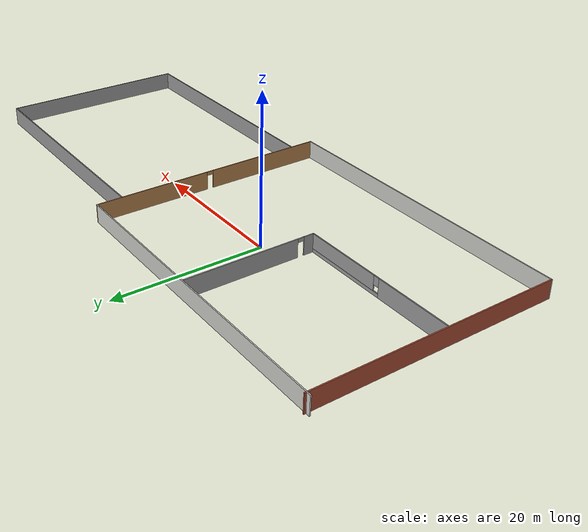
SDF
<?xml version='1.0'?>
<sdf version='1.6'>
  <model name='warehouseModel'>
    <pose frame=''>11.9115 -3.216 0 0 -0 0</pose>
    <link name='Wall_0'>
      <collision name='Wall_0_Collision'>
        <geometry>
          <box>
            <size>43 0.15 2.5</size>
          </box>
        </geometry>
        <pose frame=''>0 0 1.25 0 -0 0</pose>
      </collision>
      <visual name='Wall_0_Visual'>
        <pose frame=''>0 0 1.25 0 -0 0</pose>
        <geometry>
          <box>
            <size>43 0.15 2.5</size>
          </box>
        </geometry>
        <material>
          <script>
            <uri>file://media/materials/scripts/gazebo.material</uri>
            <name>Gazebo/CeilingTiled</name>
          </script>
          <ambient>1 1 1 1</ambient>
        </material>
        <meta>
          <layer>0</layer>
        </meta>
      </visual>
      <pose frame=''>-17.0835 16.425 0 0 -0 0</pose>
    </link>
    <link name='Wall_1'>
      <pose frame=''>4.34146 -0.125 0 0 0 -1.5708</pose>
      <visual name='Wall_1_Visual_0'>
        <pose frame=''>-8.60332 0 1.25 0 -0 0</pose>
        <geometry>
          <box>
            <size>16.0434 0.15 2.5</size>
          </box>
        </geometry>
        <material>
          <script>
            <uri>file://media/materials/scripts/gazebo.material</uri>
            <name>Gazebo/Wood</name>
          </script>
          <ambient>0.435294 0.796078 0.67451 1</ambient>
        </material>
        <meta>
          <layer>0</layer>
        </meta>
      </visual>
      <collision name='Wall_1_Collision_0'>
        <geometry>
          <box>
            <size>16.0434 0.15 2.5</size>
          </box>
        </geometry>
        <pose frame=''>-8.60332 0 1.25 0 -0 0</pose>
      </collision>
      <visual name='Wall_1_Visual_1'>
        <pose frame=''>8.47167 0 1.25 0 -0 0</pose>
        <geometry>
          <box>
            <size>16.3066 0.15 2.5</size>
          </box>
        </geometry>
        <material>
          <script>
            <uri>file://media/materials/scripts/gazebo.material</uri>
            <name>Gazebo/Wood</name>
          </script>
          <ambient>0.435294 0.796078 0.67451 1</ambient>
        </material>
        <meta>
          <layer>0</layer>
        </meta>
      </visual>
      <collision name='Wall_1_Collision_1'>
        <geometry>
          <box>
            <size>16.3066 0.15 2.5</size>
          </box>
        </geometry>
        <pose frame=''>8.47167 0 1.25 0 -0 0</pose>
      </collision>
      <visual name='Wall_1_Visual_2'>
        <pose frame=''>-0.131649 0 2.25 0 -0 0</pose>
        <geometry>
          <box>
            <size>0.9 0.15 0.5</size>
          </box>
        </geometry>
        <material>
          <script>
            <uri>file://media/materials/scripts/gazebo.material</uri>
            <name>Gazebo/Wood</name>
          </script>
          <ambient>0.435294 0.796078 0.67451 1</ambient>
        </material>
        <meta>
          <layer>0</layer>
        </meta>
      </visual>
      <collision name='Wall_1_Collision_2'>
        <geometry>
          <box>
            <size>0.9 0.15 0.5</size>
          </box>
        </geometry>
        <pose frame=''>-0.131649 0 2.25 0 -0 0</pose>
      </collision>
    </link>
    <link name='Wall_10'>
      <collision name='Wall_10_Collision'>
        <geometry>
          <box>
            <size>34 0.15 2.5</size>
          </box>
        </geometry>
        <pose frame=''>0 0 1.25 0 -0 0</pose>
      </collision>
      <visual name='Wall_10_Visual'>
        <pose frame=''>0 0 1.25 0 -0 0</pose>
        <geometry>
          <box>
            <size>34 0.15 2.5</size>
          </box>
        </geometry>
        <material>
          <script>
            <uri>file://media/materials/scripts/gazebo.material</uri>
            <name>Gazebo/Grey</name>
          </script>
          <ambient>1 1 1 1</ambient>
        </material>
        <meta>
          <layer>0</layer>
        </meta>
      </visual>
      <pose frame=''>21.5835 -13.3779 0 0 -0 3.14159</pose>
    </link>
    <link name='Wall_2'>
      <collision name='Wall_2_Collision'>
        <geometry>
          <box>
            <size>42.5 0.15 2.5</size>
          </box>
        </geometry>
        <pose frame=''>0 0 1.25 0 -0 0</pose>
      </collision>
      <visual name='Wall_2_Visual'>
        <pose frame=''>0 0 1.25 0 -0 0</pose>
        <geometry>
          <box>
            <size>42.5 0.15 2.5</size>
          </box>
        </geometry>
        <material>
          <script>
            <uri>file://media/materials/scripts/gazebo.material</uri>
            <name>Gazebo/CeilingTiled</name>
          </script>
          <ambient>0.435294 0.796078 0.67451 1</ambient>
        </material>
        <meta>
          <layer>0</layer>
        </meta>
      </visual>
      <pose frame=''>-16.8335 -16.675 0 0 -0 3.14159</pose>
    </link>
    <link name='Wall_3'>
      <collision name='Wall_3_Collision'>
        <geometry>
          <box>
            <size>33.5 0.15 2.5</size>
          </box>
        </geometry>
        <pose frame=''>0 0 1.25 0 -0 0</pose>
      </collision>
      <visual name='Wall_3_Visual'>
        <pose frame=''>0 0 1.25 0 -0 0</pose>
        <geometry>
          <box>
            <size>33.5 0.15 2.5</size>
          </box>
        </geometry>
        <material>
          <script>
            <uri>file://media/materials/scripts/gazebo.material</uri>
            <name>Gazebo/Bricks</name>
          </script>
          <ambient>0.996078 0.47451 0.0196078 1</ambient>
        </material>
        <meta>
          <layer>0</layer>
        </meta>
      </visual>
      <pose frame=''>-38.0085 0 0 0 -0 1.5708</pose>
    </link>
    <link name='Wall_5'>
      <pose frame=''>-26.9383 -1.39551 0 0 -0 0</pose>
      <visual name='Wall_5_Visual_0'>
        <pose frame=''>-5.80789 0 1.25 0 -0 0</pose>
        <geometry>
          <box>
            <size>10.3842 0.15 2.5</size>
          </box>
        </geometry>
        <material>
          <script>
            <uri>file://media/materials/scripts/gazebo.material</uri>
            <name>Gazebo/Grey</name>
          </script>
          <ambient>1 1 1 1</ambient>
        </material>
        <meta>
          <layer>0</layer>
        </meta>
      </visual>
      <collision name='Wall_5_Collision_0'>
        <geometry>
          <box>
            <size>10.3842 0.15 2.5</size>
          </box>
        </geometry>
        <pose frame=''>-5.80789 0 1.25 0 -0 0</pose>
      </collision>
      <visual name='Wall_5_Visual_1'>
        <pose frame=''>5.19211 0 0.25 0 -0 0</pose>
        <geometry>
          <box>
            <size>11.6158 0.15 0.5</size>
          </box>
        </geometry>
        <material>
          <script>
            <uri>file://media/materials/scripts/gazebo.material</uri>
            <name>Gazebo/Grey</name>
          </script>
          <ambient>1 1 1 1</ambient>
        </material>
        <meta>
          <layer>0</layer>
        </meta>
      </visual>
      <collision name='Wall_5_Collision_1'>
        <geometry>
          <box>
            <size>11.6158 0.15 0.5</size>
          </box>
        </geometry>
        <pose frame=''>5.19211 0 0.25 0 -0 0</pose>
      </collision>
      <visual name='Wall_5_Visual_2'>
        <pose frame=''>5.59211 0 1.5 0 -0 0</pose>
        <geometry>
          <box>
            <size>10.8158 0.15 2</size>
          </box>
        </geometry>
        <material>
          <script>
            <uri>file://media/materials/scripts/gazebo.material</uri>
            <name>Gazebo/Grey</name>
          </script>
          <ambient>1 1 1 1</ambient>
        </material>
        <meta>
          <layer>0</layer>
        </meta>
      </visual>
      <collision name='Wall_5_Collision_2'>
        <geometry>
          <box>
            <size>10.8158 0.15 2</size>
          </box>
        </geometry>
        <pose frame=''>5.59211 0 1.5 0 -0 0</pose>
      </collision>
      <visual name='Wall_5_Visual_3'>
        <pose frame=''>-0.215775 0 1.9 0 -0 0</pose>
        <geometry>
          <box>
            <size>0.8 0.15 1.2</size>
          </box>
        </geometry>
        <material>
          <script>
            <uri>file://media/materials/scripts/gazebo.material</uri>
            <name>Gazebo/Grey</name>
          </script>
          <ambient>1 1 1 1</ambient>
        </material>
        <meta>
          <layer>0</layer>
        </meta>
      </visual>
      <collision name='Wall_5_Collision_3'>
        <geometry>
          <box>
            <size>0.8 0.15 1.2</size>
          </box>
        </geometry>
        <pose frame=''>-0.215775 0 1.9 0 -0 0</pose>
      </collision>
    </link>
    <link name='Wall_6'>
      <pose frame=''>-16.0133 7.40449 0 0 -0 1.5708</pose>
      <visual name='Wall_6_Visual_0'>
        <pose frame=''>-8.13743 0 1.25 0 -0 0</pose>
        <geometry>
          <box>
            <size>1.47513 0.15 2.5</size>
          </box>
        </geometry>
        <material>
          <script>
            <uri>file://media/materials/scripts/gazebo.material</uri>
            <name>Gazebo/Grey</name>
          </script>
          <ambient>1 1 1 1</ambient>
        </material>
        <meta>
          <layer>0</layer>
        </meta>
      </visual>
      <collision name='Wall_6_Collision_0'>
        <geometry>
          <box>
            <size>1.47513 0.15 2.5</size>
          </box>
        </geometry>
        <pose frame=''>-8.13743 0 1.25 0 -0 0</pose>
      </collision>
      <visual name='Wall_6_Visual_1'>
        <pose frame=''>1.18756 0 1.25 0 -0 0</pose>
        <geometry>
          <box>
            <size>15.3749 0.15 2.5</size>
          </box>
        </geometry>
        <material>
          <script>
            <uri>file://media/materials/scripts/gazebo.material</uri>
            <name>Gazebo/Grey</name>
          </script>
          <ambient>1 1 1 1</ambient>
        </material>
        <meta>
          <layer>0</layer>
        </meta>
      </visual>
      <collision name='Wall_6_Collision_1'>
        <geometry>
          <box>
            <size>15.3749 0.15 2.5</size>
          </box>
        </geometry>
        <pose frame=''>1.18756 0 1.25 0 -0 0</pose>
      </collision>
      <visual name='Wall_6_Visual_2'>
        <pose frame=''>-6.94987 0 2.25 0 -0 0</pose>
        <geometry>
          <box>
            <size>0.9 0.15 0.5</size>
          </box>
        </geometry>
        <material>
          <script>
            <uri>file://media/materials/scripts/gazebo.material</uri>
            <name>Gazebo/Grey</name>
          </script>
          <ambient>1 1 1 1</ambient>
        </material>
        <meta>
          <layer>0</layer>
        </meta>
      </visual>
      <collision name='Wall_6_Collision_2'>
        <geometry>
          <box>
            <size>0.9 0.15 0.5</size>
          </box>
        </geometry>
        <pose frame=''>-6.94987 0 2.25 0 -0 0</pose>
      </collision>
    </link>
    <link name='Wall_8'>
      <collision name='Wall_8_Collision'>
        <geometry>
          <box>
            <size>34.25 0.15 2.5</size>
          </box>
        </geometry>
        <pose frame=''>0 0 1.25 0 -0 0</pose>
      </collision>
      <visual name='Wall_8_Visual'>
        <pose frame=''>0 0 1.25 0 -0 0</pose>
        <geometry>
          <box>
            <size>34.25 0.15 2.5</size>
          </box>
        </geometry>
        <material>
          <script>
            <uri>file://media/materials/scripts/gazebo.material</uri>
            <name>Gazebo/Grey</name>
          </script>
          <ambient>1 1 1 1</ambient>
        </material>
        <meta>
          <layer>0</layer>
        </meta>
      </visual>
      <pose frame=''>21.4585 12.9721 0 0 -0 0</pose>
    </link>
    <link name='Wall_9'>
      <collision name='Wall_9_Collision'>
        <geometry>
          <box>
            <size>26.5 0.15 2.5</size>
          </box>
        </geometry>
        <pose frame=''>0 0 1.25 0 -0 0</pose>
      </collision>
      <visual name='Wall_9_Visual'>
        <pose frame=''>0 0 1.25 0 -0 0</pose>
        <geometry>
          <box>
            <size>26.5 0.15 2.5</size>
          </box>
        </geometry>
        <material>
          <script>
            <uri>file://media/materials/scripts/gazebo.material</uri>
            <name>Gazebo/Grey</name>
          </script>
          <ambient>1 1 1 1</ambient>
        </material>
        <meta>
          <layer>0</layer>
        </meta>
      </visual>
      <pose frame=''>38.5085 -0.20291 0 0 0 -1.5708</pose>
    </link>
    <static>1</static>
  </model>
</sdf>
